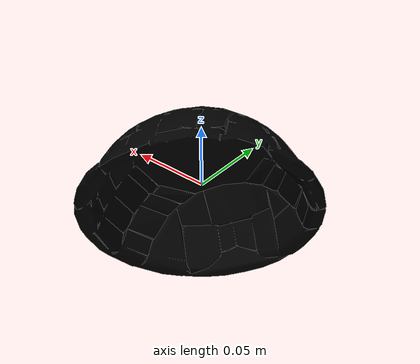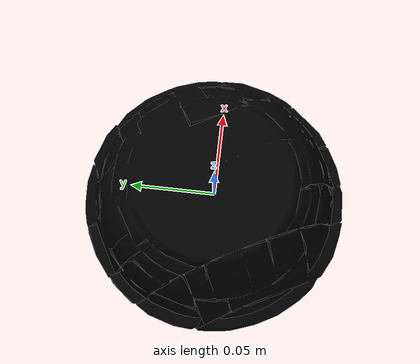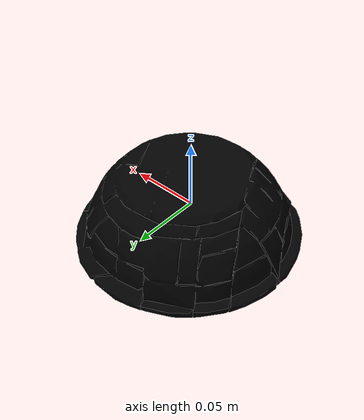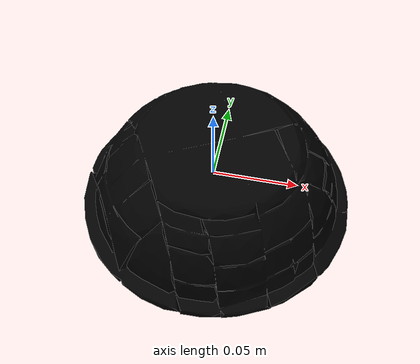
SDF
<?xml version="1.0"?>
<sdf version="1.4">
  <model name="024_bowl_textured">
    <pose>0 0 0  0 0 0</pose>
    <link name="body">
      <inertial>
        <mass> 1.0 </mass>
        <pose>0 0 0 0 0 0</pose>
        <inertia>
          <ixx>0.0022843286581546805</ixx>
          <ixy>0.0</ixy>
          <ixz>0.0</ixz>
          <iyy>0.0023741865878156676</iyy>
          <iyz>0.0</iyz>
          <izz>0.00393078950702965</izz>
        </inertia>
      </inertial>
      <visual name="visual">
        <geometry>
          <mesh>
            <uri>model://024_bowl_textured/textured.dae</uri>
          </mesh>
        </geometry>
        <pose>0.034032982399771976 0.03447973734030583 0.025777833737271855 -3.120117696889782 0.00048103096106732926 2.0634805345623404</pose>
      </visual>
      <collision name="collision">
        <geometry>
          <mesh>
            <uri>model://024_bowl_textured/textured.col.dae</uri>
          </mesh>
        </geometry>
        <max_contacts>10</max_contacts>
        <surface>
          <friction>
            <ode>
              <mu>0.8</mu>
              <mu2>0.8</mu2>
              <slip1>0</slip1>
              <slip2>0</slip2>
            </ode>
            <torsional>
              <ode/>
            </torsional>
          </friction>
          <contact>
            <ode>
              <kp>1000000.0</kp>
              <kd>1.0</kd>
              <max_vel>0.0</max_vel>
            </ode>
          </contact>
        </surface>
        <pose>0.034032982399771976 0.03447973734030583 0.025777833737271855 -3.120117696889782 0.00048103096106732926 2.0634805345623404</pose>
      </collision>
    </link>
  </model>
</sdf>
